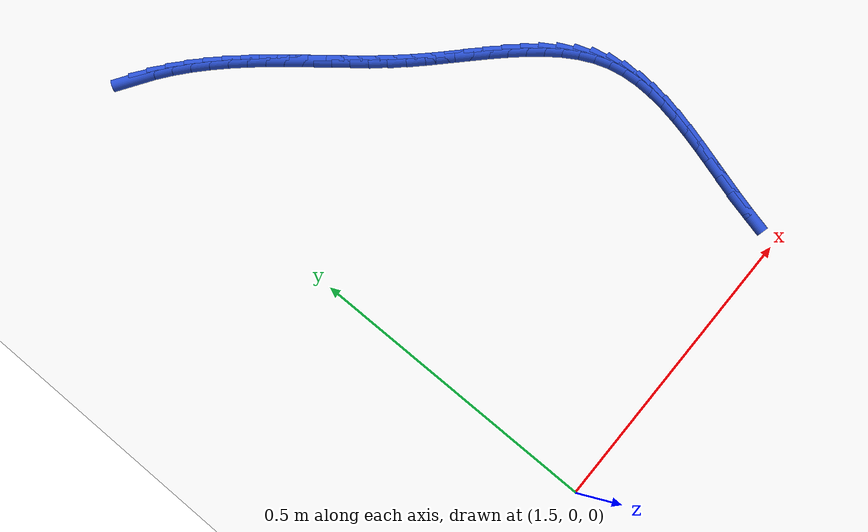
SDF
<sdf version="1.6">
 <world name="default">
  <model name="ground_plane">
   <static>1</static>
   <link name="link">
    <collision name="collision">
     <geometry><plane><normal>0 0 1</normal><size>100 100</size></plane></geometry>
     <surface><friction><ode><mu>100</mu><mu2>50</mu2></ode></friction></surface>
    </collision>
    <visual name="visual">
     <cast_shadows>0</cast_shadows>
     <geometry><plane><normal>0 0 1</normal><size>100 100</size></plane></geometry>
     <material>
      <script><uri>file://media/materials/scripts/gazebo.material</uri><name>Gazebo/WhiteGlow</name></script>
     </material>
    </visual>
   </link>
  </model>
  <model name="line">
   <link name="link_73">
    <pose>1.5580909382963097 0.9682548752761739 0.01 0 1.57 -0.5722398250840559</pose>
    <collision name="collision">
     <geometry><cylinder><radius>0.01</radius><length>0.08</length></cylinder></geometry>
    </collision>
    <visual name="visual">
     <material>
      <script><name>Gazebo/Blue</name><uri>file://media/materials/scripts/gazebo.material</uri></script>
     </material>
     <geometry><cylinder><radius>0.01</radius><length>0.08</length></cylinder></geometry>
    </visual>
   </link>
   <link name="link_74">
    <pose>1.5832402289318273 0.9520553838154171 0.01 0 1.57 -0.6385414616156481</pose>
    <collision name="collision">
     <geometry><cylinder><radius>0.01</radius><length>0.08</length></cylinder></geometry>
    </collision>
    <visual name="visual">
     <material>
      <script><name>Gazebo/Blue</name><uri>file://media/materials/scripts/gazebo.material</uri></script>
     </material>
     <geometry><cylinder><radius>0.01</radius><length>0.08</length></cylinder></geometry>
    </visual>
   </link>
   <link name="link_75">
    <pose>1.6075424583392115 0.9340163442356438 0.01 0 1.57 -0.6957099818627236</pose>
    <collision name="collision">
     <geometry><cylinder><radius>0.01</radius><length>0.08</length></cylinder></geometry>
    </collision>
    <visual name="visual">
     <material>
      <script><name>Gazebo/Blue</name><uri>file://media/materials/scripts/gazebo.material</uri></script>
     </material>
     <geometry><cylinder><radius>0.01</radius><length>0.08</length></cylinder></geometry>
    </visual>
   </link>
   <link name="link_76">
    <pose>1.6310119988920813 0.9144197198180616 0.01 0 1.57 -0.744546908092899</pose>
    <collision name="collision">
     <geometry><cylinder><radius>0.01</radius><length>0.08</length></cylinder></geometry>
    </collision>
    <visual name="visual">
     <material>
      <script><name>Gazebo/Blue</name><uri>file://media/materials/scripts/gazebo.material</uri></script>
     </material>
     <geometry><cylinder><radius>0.01</radius><length>0.08</length></cylinder></geometry>
    </visual>
   </link>
   <link name="link_77">
    <pose>1.6536632229640522 0.8935474738438784 0.01 0 1.57 -0.7858242198400484</pose>
    <collision name="collision">
     <geometry><cylinder><radius>0.01</radius><length>0.08</length></cylinder></geometry>
    </collision>
    <visual name="visual">
     <material>
      <script><name>Gazebo/Blue</name><uri>file://media/materials/scripts/gazebo.material</uri></script>
     </material>
     <geometry><cylinder><radius>0.01</radius><length>0.08</length></cylinder></geometry>
    </visual>
   </link>
   <link name="link_78">
    <pose>1.6755105029287416 0.8716815695943011 0.01 0 1.57 -0.8202157659437417</pose>
    <collision name="collision">
     <geometry><cylinder><radius>0.01</radius><length>0.08</length></cylinder></geometry>
    </collision>
    <visual name="visual">
     <material>
      <script><name>Gazebo/Blue</name><uri>file://media/materials/scripts/gazebo.material</uri></script>
     </material>
     <geometry><cylinder><radius>0.01</radius><length>0.08</length></cylinder></geometry>
    </visual>
   </link>
   <link name="link_79">
    <pose>1.6965682111597675 0.8491039703505384 0.01 0 1.57 -0.8482589207673639</pose>
    <collision name="collision">
     <geometry><cylinder><radius>0.01</radius><length>0.08</length></cylinder></geometry>
    </collision>
    <visual name="visual">
     <material>
      <script><name>Gazebo/Blue</name><uri>file://media/materials/scripts/gazebo.material</uri></script>
     </material>
     <geometry><cylinder><radius>0.01</radius><length>0.08</length></cylinder></geometry>
    </visual>
   </link>
   <link name="link_80">
    <pose>1.7168507200307466 0.8260966393937976 0.01 0 1.57 -0.8703094331605452</pose>
    <collision name="collision">
     <geometry><cylinder><radius>0.01</radius><length>0.08</length></cylinder></geometry>
    </collision>
    <visual name="visual">
     <material>
      <script><name>Gazebo/Blue</name><uri>file://media/materials/scripts/gazebo.material</uri></script>
     </material>
     <geometry><cylinder><radius>0.01</radius><length>0.08</length></cylinder></geometry>
    </visual>
   </link>
   <link name="link_81">
    <pose>1.7363789409900152 0.8029348156674097 0.01 0 1.57 -0.8860357209856227</pose>
    <collision name="collision">
     <geometry><cylinder><radius>0.01</radius><length>0.08</length></cylinder></geometry>
    </collision>
    <visual name="visual">
     <material>
      <script><name>Gazebo/Blue</name><uri>file://media/materials/scripts/gazebo.material</uri></script>
     </material>
     <geometry><cylinder><radius>0.01</radius><length>0.08</length></cylinder></geometry>
    </visual>
   </link>
   <link name="link_82">
    <pose>1.7552967210931634 0.7797673195316748 0.01 0 1.57 -0.894710031149734</pose>
    <collision name="collision">
     <geometry><cylinder><radius>0.01</radius><length>0.08</length></cylinder></geometry>
    </collision>
    <visual name="visual">
     <material>
      <script><name>Gazebo/Blue</name><uri>file://media/materials/scripts/gazebo.material</uri></script>
     </material>
     <geometry><cylinder><radius>0.01</radius><length>0.08</length></cylinder></geometry>
    </visual>
   </link>
   <link name="link_83">
    <pose>1.7738572819088314 0.7566304980670335 0.01 0 1.57 -0.8960183913171533</pose>
    <collision name="collision">
     <geometry><cylinder><radius>0.01</radius><length>0.08</length></cylinder></geometry>
    </collision>
    <visual name="visual">
     <material>
      <script><name>Gazebo/Blue</name><uri>file://media/materials/scripts/gazebo.material</uri></script>
     </material>
     <geometry><cylinder><radius>0.01</radius><length>0.08</length></cylinder></geometry>
    </visual>
   </link>
   <link name="link_84">
    <pose>1.7923176602408384 0.7335567750266206 0.01 0 1.57 -0.8898590115530806</pose>
    <collision name="collision">
     <geometry><cylinder><radius>0.01</radius><length>0.08</length></cylinder></geometry>
    </collision>
    <visual name="visual">
     <material>
      <script><name>Gazebo/Blue</name><uri>file://media/materials/scripts/gazebo.material</uri></script>
     </material>
     <geometry><cylinder><radius>0.01</radius><length>0.08</length></cylinder></geometry>
    </visual>
   </link>
   <link name="link_85">
    <pose>1.8109348928930011 0.7105785741635687 0.01 0 1.57 -0.8763358978236921</pose>
    <collision name="collision">
     <geometry><cylinder><radius>0.01</radius><length>0.08</length></cylinder></geometry>
    </collision>
    <visual name="visual">
     <material>
      <script><name>Gazebo/Blue</name><uri>file://media/materials/scripts/gazebo.material</uri></script>
     </material>
     <geometry><cylinder><radius>0.01</radius><length>0.08</length></cylinder></geometry>
    </visual>
   </link>
   <link name="link_86">
    <pose>1.8299660166691374 0.6877283192310119 0.01 0 1.57 -0.8557629781092214</pose>
    <collision name="collision">
     <geometry><cylinder><radius>0.01</radius><length>0.08</length></cylinder></geometry>
    </collision>
    <visual name="visual">
     <material>
      <script><name>Gazebo/Blue</name><uri>file://media/materials/scripts/gazebo.material</uri></script>
     </material>
     <geometry><cylinder><radius>0.01</radius><length>0.08</length></cylinder></geometry>
    </visual>
   </link>
   <link name="link_87">
    <pose>1.8496680683730653 0.6650384339820831 0.01 0 1.57 -0.8286635321905329</pose>
    <collision name="collision">
     <geometry><cylinder><radius>0.01</radius><length>0.08</length></cylinder></geometry>
    </collision>
    <visual name="visual">
     <material>
      <script><name>Gazebo/Blue</name><uri>file://media/materials/scripts/gazebo.material</uri></script>
     </material>
     <geometry><cylinder><radius>0.01</radius><length>0.08</length></cylinder></geometry>
    </visual>
   </link>
   <link name="link_88">
    <pose>1.8702980848086024 0.6425413421699163 0.01 0 1.57 -0.798026326531979</pose>
    <collision name="collision">
     <geometry><cylinder><radius>0.01</radius><length>0.08</length></cylinder></geometry>
    </collision>
    <visual name="visual">
     <material>
      <script><name>Gazebo/Blue</name><uri>file://media/materials/scripts/gazebo.material</uri></script>
     </material>
     <geometry><cylinder><radius>0.01</radius><length>0.08</length></cylinder></geometry>
    </visual>
   </link>
   <link name="link_89">
    <pose>1.892029974447707 0.6202535350681081 0.01 0 1.57 -0.7769304044330432</pose>
    <collision name="collision">
     <geometry><cylinder><radius>0.01</radius><length>0.08</length></cylinder></geometry>
    </collision>
    <visual name="visual">
     <material>
      <script><name>Gazebo/Blue</name><uri>file://media/materials/scripts/gazebo.material</uri></script>
     </material>
     <geometry><cylinder><radius>0.01</radius><length>0.08</length></cylinder></geometry>
    </visual>
   </link>
   <link name="link_90">
    <pose>1.9145616295936636 0.5981002700989693 0.01 0 1.57 -0.7690770717782823</pose>
    <collision name="collision">
     <geometry><cylinder><radius>0.01</radius><length>0.08</length></cylinder></geometry>
    </collision>
    <visual name="visual">
     <material>
      <script><name>Gazebo/Blue</name><uri>file://media/materials/scripts/gazebo.material</uri></script>
     </material>
     <geometry><cylinder><radius>0.01</radius><length>0.08</length></cylinder></geometry>
    </visual>
   </link>
   <link name="link_91">
    <pose>1.9374217998192602 0.5759743865785858 0.01 0 1.57 -0.7740118083689664</pose>
    <collision name="collision">
     <geometry><cylinder><radius>0.01</radius><length>0.08</length></cylinder></geometry>
    </collision>
    <visual name="visual">
     <material>
      <script><name>Gazebo/Blue</name><uri>file://media/materials/scripts/gazebo.material</uri></script>
     </material>
     <geometry><cylinder><radius>0.01</radius><length>0.08</length></cylinder></geometry>
    </visual>
   </link>
   <link name="link_92">
    <pose>1.9601390320031278 0.5537686849744305 0.01 0 1.57 -0.791912838057022</pose>
    <collision name="collision">
     <geometry><cylinder><radius>0.01</radius><length>0.08</length></cylinder></geometry>
    </collision>
    <visual name="visual">
     <material>
      <script><name>Gazebo/Blue</name><uri>file://media/materials/scripts/gazebo.material</uri></script>
     </material>
     <geometry><cylinder><radius>0.01</radius><length>0.08</length></cylinder></geometry>
    </visual>
   </link>
   <link name="link_93">
    <pose>1.9822418730238986 0.5313759657539755 0.01 0 1.57 -0.8235898662333819</pose>
    <collision name="collision">
     <geometry><cylinder><radius>0.01</radius><length>0.08</length></cylinder></geometry>
    </collision>
    <visual name="visual">
     <material>
      <script><name>Gazebo/Blue</name><uri>file://media/materials/scripts/gazebo.material</uri></script>
     </material>
     <geometry><cylinder><radius>0.01</radius><length>0.08</length></cylinder></geometry>
    </visual>
   </link>
   <link name="link_94">
    <pose>2.0032588697602054 0.5086890293846938 0.01 0 1.57 -0.8704759584646313</pose>
    <collision name="collision">
     <geometry><cylinder><radius>0.01</radius><length>0.08</length></cylinder></geometry>
    </collision>
    <visual name="visual">
     <material>
      <script><name>Gazebo/Blue</name><uri>file://media/materials/scripts/gazebo.material</uri></script>
     </material>
     <geometry><cylinder><radius>0.01</radius><length>0.08</length></cylinder></geometry>
    </visual>
   </link>
   <link name="link_95">
    <pose>2.0227185690906797 0.48560067633405724 0.01 0 1.57 -0.9345701599953417</pose>
    <collision name="collision">
     <geometry><cylinder><radius>0.01</radius><length>0.08</length></cylinder></geometry>
    </collision>
    <visual name="visual">
     <material>
      <script><name>Gazebo/Blue</name><uri>file://media/materials/scripts/gazebo.material</uri></script>
     </material>
     <geometry><cylinder><radius>0.01</radius><length>0.08</length></cylinder></geometry>
    </visual>
   </link>
   <link name="link_96">
    <pose>2.0401495178939535 0.4620037070695388 0.01 0 1.57 -1.0182261077908574</pose>
    <collision name="collision">
     <geometry><cylinder><radius>0.01</radius><length>0.08</length></cylinder></geometry>
    </collision>
    <visual name="visual">
     <material>
      <script><name>Gazebo/Blue</name><uri>file://media/materials/scripts/gazebo.material</uri></script>
     </material>
     <geometry><cylinder><radius>0.01</radius><length>0.08</length></cylinder></geometry>
    </visual>
   </link>
   <link name="link_97">
    <pose>2.055080263048658 0.43779092205861075 0.01 0 1.57 -1.1236054590980067</pose>
    <collision name="collision">
     <geometry><cylinder><radius>0.01</radius><length>0.08</length></cylinder></geometry>
    </collision>
    <visual name="visual">
     <material>
      <script><name>Gazebo/Blue</name><uri>file://media/materials/scripts/gazebo.material</uri></script>
     </material>
     <geometry><cylinder><radius>0.01</radius><length>0.08</length></cylinder></geometry>
    </visual>
   </link>
   <link name="link_98">
    <pose>2.067039351433427 0.4128551217687451 0.01 0 1.57 -1.251517925698652</pose>
    <collision name="collision">
     <geometry><cylinder><radius>0.01</radius><length>0.08</length></cylinder></geometry>
    </collision>
    <visual name="visual">
     <material>
      <script><name>Gazebo/Blue</name><uri>file://media/materials/scripts/gazebo.material</uri></script>
     </material>
     <geometry><cylinder><radius>0.01</radius><length>0.08</length></cylinder></geometry>
    </visual>
   </link>
   <link name="link_99">
    <pose>2.0755571739713603 0.3870895067087412 0.01 0 1.57 -1.389710440287393</pose>
    <collision name="collision">
     <geometry><cylinder><radius>0.01</radius><length>0.08</length></cylinder></geometry>
    </collision>
    <visual name="visual">
     <material>
      <script><name>Gazebo/Blue</name><uri>file://media/materials/scripts/gazebo.material</uri></script>
     </material>
     <geometry><cylinder><radius>0.01</radius><length>0.08</length></cylinder></geometry>
    </visual>
   </link>
   <link name="link_100">
    <pose>2.0804353545266063 0.3604461178260306 0.01 0 1.57 -1.51275241648025</pose>
    <collision name="collision">
     <geometry><cylinder><radius>0.01</radius><length>0.08</length></cylinder></geometry>
    </collision>
    <visual name="visual">
     <material>
      <script><name>Gazebo/Blue</name><uri>file://media/materials/scripts/gazebo.material</uri></script>
     </material>
     <geometry><cylinder><radius>0.01</radius><length>0.08</length></cylinder></geometry>
    </visual>
   </link>
   <link name="link_101">
    <pose>2.0820303790732533 0.3329973661447934 0.01 0 1.57 1.525958541227795</pose>
    <collision name="collision">
     <geometry><cylinder><radius>0.01</radius><length>0.08</length></cylinder></geometry>
    </collision>
    <visual name="visual">
     <material>
      <script><name>Gazebo/Blue</name><uri>file://media/materials/scripts/gazebo.material</uri></script>
     </material>
     <geometry><cylinder><radius>0.01</radius><length>0.08</length></cylinder></geometry>
    </visual>
   </link>
   <link name="link_102">
    <pose>2.080766586869532 0.3048303825716322 0.01 0 1.57 1.4430747049738741</pose>
    <collision name="collision">
     <geometry><cylinder><radius>0.01</radius><length>0.08</length></cylinder></geometry>
    </collision>
    <visual name="visual">
     <material>
      <script><name>Gazebo/Blue</name><uri>file://media/materials/scripts/gazebo.material</uri></script>
     </material>
     <geometry><cylinder><radius>0.01</radius><length>0.08</length></cylinder></geometry>
    </visual>
   </link>
   <link name="link_103">
    <pose>2.077068317173674 0.27603229801315093 0.01 0 1.57 1.3786495175304003</pose>
    <collision name="collision">
     <geometry><cylinder><radius>0.01</radius><length>0.08</length></cylinder></geometry>
    </collision>
    <visual name="visual">
     <material>
      <script><name>Gazebo/Blue</name><uri>file://media/materials/scripts/gazebo.material</uri></script>
     </material>
     <geometry><cylinder><radius>0.01</radius><length>0.08</length></cylinder></geometry>
    </visual>
   </link>
   <link name="link_104">
    <pose>2.071359909243911 0.24669024337595227 0.01 0 1.57 1.3307355405274868</pose>
    <collision name="collision">
     <geometry><cylinder><radius>0.01</radius><length>0.08</length></cylinder></geometry>
    </collision>
    <visual name="visual">
     <material>
      <script><name>Gazebo/Blue</name><uri>file://media/materials/scripts/gazebo.material</uri></script>
     </material>
     <geometry><cylinder><radius>0.01</radius><length>0.08</length></cylinder></geometry>
    </visual>
   </link>
   <link name="link_105">
    <pose>2.0640657023384734 0.21689134956664033 0.01 0 1.57 1.2975276657330816</pose>
    <collision name="collision">
     <geometry><cylinder><radius>0.01</radius><length>0.08</length></cylinder></geometry>
    </collision>
    <visual name="visual">
     <material>
      <script><name>Gazebo/Blue</name><uri>file://media/materials/scripts/gazebo.material</uri></script>
     </material>
     <geometry><cylinder><radius>0.01</radius><length>0.08</length></cylinder></geometry>
    </visual>
   </link>
   <link name="link_106">
    <pose>2.055610035715593 0.1867227474918176 0.01 0 1.57 1.277610086449788</pose>
    <collision name="collision">
     <geometry><cylinder><radius>0.01</radius><length>0.08</length></cylinder></geometry>
    </collision>
    <visual name="visual">
     <material>
      <script><name>Gazebo/Blue</name><uri>file://media/materials/scripts/gazebo.material</uri></script>
     </material>
     <geometry><cylinder><radius>0.01</radius><length>0.08</length></cylinder></geometry>
    </visual>
   </link>
   <link name="link_107">
    <pose>2.046417248633501 0.15627156805808817 0.01 0 1.57 1.2700384165606204</pose>
    <collision name="collision">
     <geometry><cylinder><radius>0.01</radius><length>0.08</length></cylinder></geometry>
    </collision>
    <visual name="visual">
     <material>
      <script><name>Gazebo/Blue</name><uri>file://media/materials/scripts/gazebo.material</uri></script>
     </material>
     <geometry><cylinder><radius>0.01</radius><length>0.08</length></cylinder></geometry>
    </visual>
   </link>
   <link name="link_108">
    <pose>2.0369116803504284 0.1256249421720547 0.01 0 1.57 1.2743496391041975</pose>
    <collision name="collision">
     <geometry><cylinder><radius>0.01</radius><length>0.08</length></cylinder></geometry>
    </collision>
    <visual name="visual">
     <material>
      <script><name>Gazebo/Blue</name><uri>file://media/materials/scripts/gazebo.material</uri></script>
     </material>
     <geometry><cylinder><radius>0.01</radius><length>0.08</length></cylinder></geometry>
    </visual>
   </link>
   <link name="link_109">
    <pose>2.027517670124608 0.09487000074032115 0.01 0 1.57 1.2905471100233739</pose>
    <collision name="collision">
     <geometry><cylinder><radius>0.01</radius><length>0.08</length></cylinder></geometry>
    </collision>
    <visual name="visual">
     <material>
      <script><name>Gazebo/Blue</name><uri>file://media/materials/scripts/gazebo.material</uri></script>
     </material>
     <geometry><cylinder><radius>0.01</radius><length>0.08</length></cylinder></geometry>
    </visual>
   </link>
   <link name="link_110">
    <pose>2.018659557214268 0.06409387466949013 0.01 0 1.57 1.3190766382663865</pose>
    <collision name="collision">
     <geometry><cylinder><radius>0.01</radius><length>0.08</length></cylinder></geometry>
    </collision>
    <visual name="visual">
     <material>
      <script><name>Gazebo/Blue</name><uri>file://media/materials/scripts/gazebo.material</uri></script>
     </material>
     <geometry><cylinder><radius>0.01</radius><length>0.08</length></cylinder></geometry>
    </visual>
   </link>
  </model>
 </world>
</sdf>
